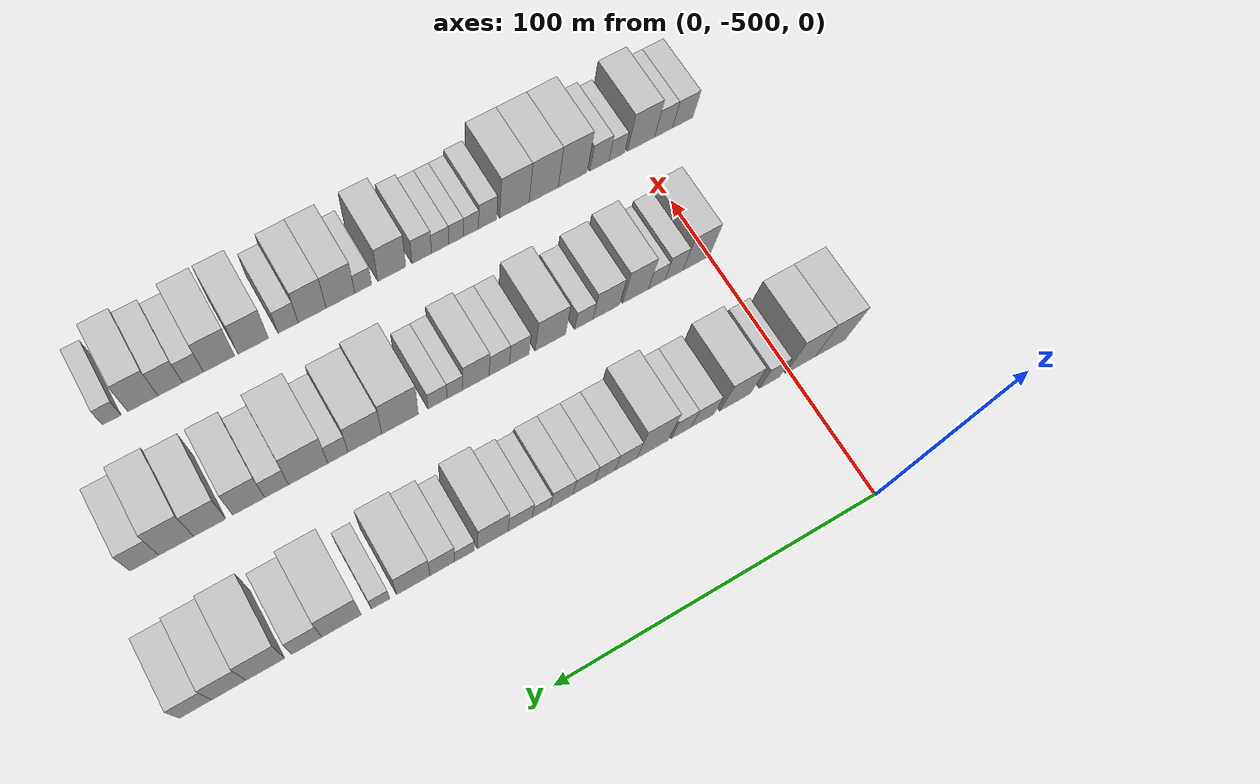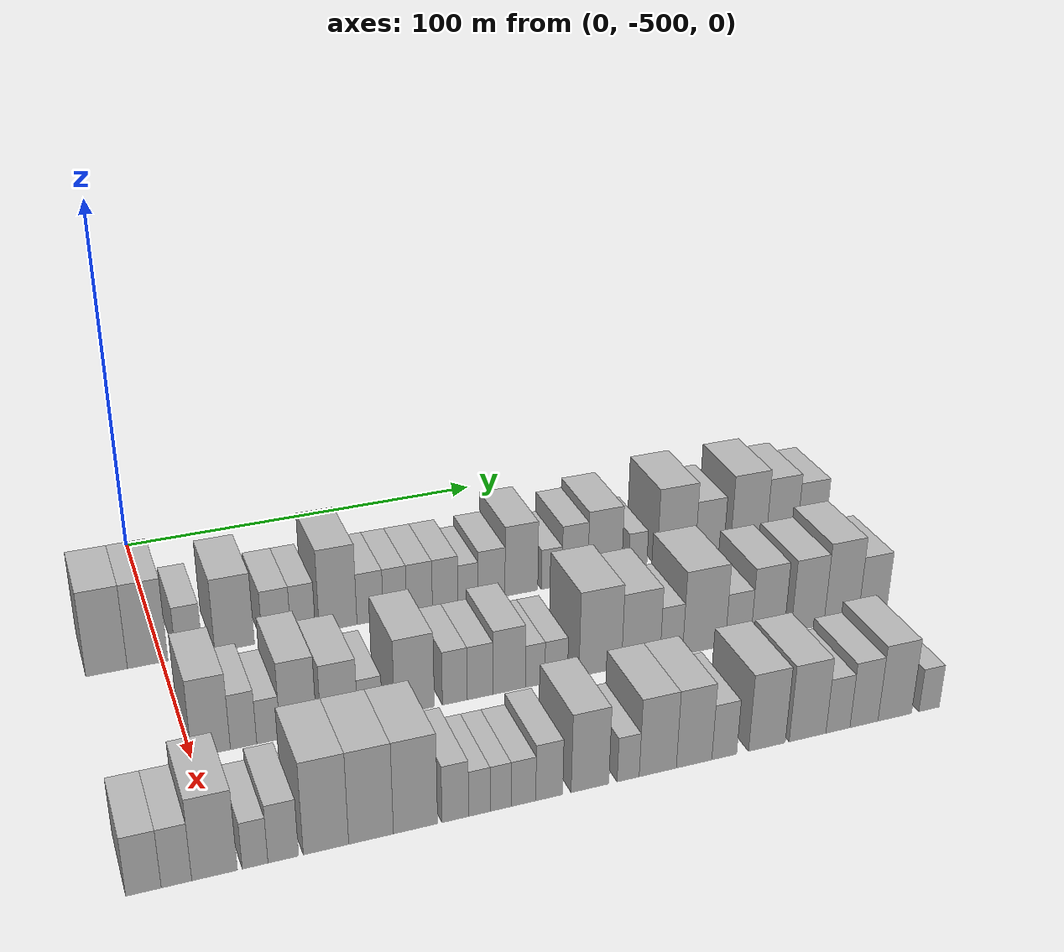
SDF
<sdf version="1.6">
 <world name="default">
  <model name="building_13">
   <static>1</static>
   <pose>50.0000 -513.5343 0 0.000000 0.000000 0.000000</pose>
   <link name="link">
    <pose>0 0 12.00 0 0 0</pose>
    <collision name="collision"><geometry><box><size>20.0000 10.0883 24.0000</size></box></geometry></collision>
    <visual name="visual">
     <cast_shadows>0</cast_shadows>
     <geometry><box><size>20.0000 10.0883 24.0000</size></box></geometry>
     <material>
      <script>
       <uri>model://HANNAS_wall/materials/scripts</uri>
       <uri>model://HANNAS_wall/materials/textures</uri>
       <name>vrc/HANNAS_wall</name>
      </script>
     </material>
    </visual>
   </link>
  </model>
  <model name="building_14">
   <static>1</static>
   <pose>50.0000 -503.5252 0 0.000000 0.000000 0.000000</pose>
   <link name="link">
    <pose>0 0 12.00 0 0 0</pose>
    <collision name="collision"><geometry><box><size>20.0000 9.9298 24.0000</size></box></geometry></collision>
    <visual name="visual">
     <cast_shadows>0</cast_shadows>
     <geometry><box><size>20.0000 9.9298 24.0000</size></box></geometry>
     <material>
      <script>
       <uri>model://HANNAS_wall/materials/scripts</uri>
       <uri>model://HANNAS_wall/materials/textures</uri>
       <name>vrc/HANNAS_wall</name>
      </script>
     </material>
    </visual>
   </link>
  </model>
  <model name="building_15">
   <static>1</static>
   <pose>50.0000 -493.2294 0 0.000000 0.000000 0.000000</pose>
   <link name="link">
    <pose>0 0 7.50 0 0 0</pose>
    <collision name="collision"><geometry><box><size>20.0000 6.6619 15.0000</size></box></geometry></collision>
    <visual name="visual">
     <cast_shadows>0</cast_shadows>
     <geometry><box><size>20.0000 6.6619 15.0000</size></box></geometry>
     <material>
      <script>
       <uri>model://HANNAS_wall/materials/scripts</uri>
       <uri>model://HANNAS_wall/materials/textures</uri>
       <name>vrc/HANNAS_wall</name>
      </script>
     </material>
    </visual>
   </link>
  </model>
  <model name="building_16">
   <static>1</static>
   <pose>50.0000 -481.8707 0 0.000000 0.000000 0.000000</pose>
   <link name="link">
    <pose>0 0 10.50 0 0 0</pose>
    <collision name="collision"><geometry><box><size>20.0000 10.0555 21.0000</size></box></geometry></collision>
    <visual name="visual">
     <cast_shadows>0</cast_shadows>
     <geometry><box><size>20.0000 10.0555 21.0000</size></box></geometry>
     <material>
      <script>
       <uri>model://HANNAS_wall/materials/scripts</uri>
       <uri>model://HANNAS_wall/materials/textures</uri>
       <name>vrc/HANNAS_wall</name>
      </script>
     </material>
    </visual>
   </link>
  </model>
  <model name="building_17">
   <static>1</static>
   <pose>50.0000 -471.1658 0 0.000000 0.000000 0.000000</pose>
   <link name="link">
    <pose>0 0 7.50 0 0 0</pose>
    <collision name="collision"><geometry><box><size>20.0000 7.3543 15.0000</size></box></geometry></collision>
    <visual name="visual">
     <cast_shadows>0</cast_shadows>
     <geometry><box><size>20.0000 7.3543 15.0000</size></box></geometry>
     <material>
      <script>
       <uri>model://HANNAS_wall/materials/scripts</uri>
       <uri>model://HANNAS_wall/materials/textures</uri>
       <name>vrc/HANNAS_wall</name>
      </script>
     </material>
    </visual>
   </link>
  </model>
  <model name="building_18">
   <static>1</static>
   <pose>50.0000 -464.2979 0 0.000000 0.000000 0.000000</pose>
   <link name="link">
    <pose>0 0 7.50 0 0 0</pose>
    <collision name="collision"><geometry><box><size>20.0000 6.3814 15.0000</size></box></geometry></collision>
    <visual name="visual">
     <cast_shadows>0</cast_shadows>
     <geometry><box><size>20.0000 6.3814 15.0000</size></box></geometry>
     <material>
      <script>
       <uri>model://HANNAS_wall/materials/scripts</uri>
       <uri>model://HANNAS_wall/materials/textures</uri>
       <name>vrc/HANNAS_wall</name>
      </script>
     </material>
    </visual>
   </link>
  </model>
  <model name="building_19">
   <static>1</static>
   <pose>50.0000 -455.1495 0 0.000000 0.000000 0.000000</pose>
   <link name="link">
    <pose>0 0 12.00 0 0 0</pose>
    <collision name="collision"><geometry><box><size>20.0000 9.9155 24.0000</size></box></geometry></collision>
    <visual name="visual">
     <cast_shadows>0</cast_shadows>
     <geometry><box><size>20.0000 9.9155 24.0000</size></box></geometry>
     <material>
      <script>
       <uri>model://HANNAS_wall/materials/scripts</uri>
       <uri>model://HANNAS_wall/materials/textures</uri>
       <name>vrc/HANNAS_wall</name>
      </script>
     </material>
    </visual>
   </link>
  </model>
  <model name="building_20">
   <static>1</static>
   <pose>50.0000 -446.6802 0 0.000000 0.000000 0.000000</pose>
   <link name="link">
    <pose>0 0 7.50 0 0 0</pose>
    <collision name="collision"><geometry><box><size>20.0000 7.0231 15.0000</size></box></geometry></collision>
    <visual name="visual">
     <cast_shadows>0</cast_shadows>
     <geometry><box><size>20.0000 7.0231 15.0000</size></box></geometry>
     <material>
      <script>
       <uri>model://HANNAS_wall/materials/scripts</uri>
       <uri>model://HANNAS_wall/materials/textures</uri>
       <name>vrc/HANNAS_wall</name>
      </script>
     </material>
    </visual>
   </link>
  </model>
  <model name="building_21">
   <static>1</static>
   <pose>50.0000 -440.0367 0 0.000000 0.000000 0.000000</pose>
   <link name="link">
    <pose>0 0 7.50 0 0 0</pose>
    <collision name="collision"><geometry><box><size>20.0000 6.2639 15.0000</size></box></geometry></collision>
    <visual name="visual">
     <cast_shadows>0</cast_shadows>
     <geometry><box><size>20.0000 6.2639 15.0000</size></box></geometry>
     <material>
      <script>
       <uri>model://HANNAS_wall/materials/scripts</uri>
       <uri>model://HANNAS_wall/materials/textures</uri>
       <name>vrc/HANNAS_wall</name>
      </script>
     </material>
    </visual>
   </link>
  </model>
  <model name="building_22">
   <static>1</static>
   <pose>50.0000 -433.4118 0 0.000000 0.000000 0.000000</pose>
   <link name="link">
    <pose>0 0 7.50 0 0 0</pose>
    <collision name="collision"><geometry><box><size>20.0000 6.9858 15.0000</size></box></geometry></collision>
    <visual name="visual">
     <cast_shadows>0</cast_shadows>
     <geometry><box><size>20.0000 6.9858 15.0000</size></box></geometry>
     <material>
      <script>
       <uri>model://HANNAS_wall/materials/scripts</uri>
       <uri>model://HANNAS_wall/materials/textures</uri>
       <name>vrc/HANNAS_wall</name>
      </script>
     </material>
    </visual>
   </link>
  </model>
  <model name="building_23">
   <static>1</static>
   <pose>50.0000 -426.4306 0 0.000000 0.000000 0.000000</pose>
   <link name="link">
    <pose>0 0 7.50 0 0 0</pose>
    <collision name="collision"><geometry><box><size>20.0000 6.9766 15.0000</size></box></geometry></collision>
    <visual name="visual">
     <cast_shadows>0</cast_shadows>
     <geometry><box><size>20.0000 6.9766 15.0000</size></box></geometry>
     <material>
      <script>
       <uri>model://HANNAS_wall/materials/scripts</uri>
       <uri>model://HANNAS_wall/materials/textures</uri>
       <name>vrc/HANNAS_wall</name>
      </script>
     </material>
    </visual>
   </link>
  </model>
  <model name="building_24">
   <static>1</static>
   <pose>50.0000 -420.1451 0 0.000000 0.000000 0.000000</pose>
   <link name="link">
    <pose>0 0 6.00 0 0 0</pose>
    <collision name="collision"><geometry><box><size>20.0000 5.5945 12.0000</size></box></geometry></collision>
    <visual name="visual">
     <cast_shadows>0</cast_shadows>
     <geometry><box><size>20.0000 5.5945 12.0000</size></box></geometry>
     <material>
      <script>
       <uri>model://HANNAS_wall/materials/scripts</uri>
       <uri>model://HANNAS_wall/materials/textures</uri>
       <name>vrc/HANNAS_wall</name>
      </script>
     </material>
    </visual>
   </link>
  </model>
  <model name="building_25">
   <static>1</static>
   <pose>50.0000 -413.6183 0 0.000000 0.000000 0.000000</pose>
   <link name="link">
    <pose>0 0 7.50 0 0 0</pose>
    <collision name="collision"><geometry><box><size>20.0000 7.4590 15.0000</size></box></geometry></collision>
    <visual name="visual">
     <cast_shadows>0</cast_shadows>
     <geometry><box><size>20.0000 7.4590 15.0000</size></box></geometry>
     <material>
      <script>
       <uri>model://HANNAS_wall/materials/scripts</uri>
       <uri>model://HANNAS_wall/materials/textures</uri>
       <name>vrc/HANNAS_wall</name>
      </script>
     </material>
    </visual>
   </link>
  </model>
  <model name="building_26">
   <static>1</static>
   <pose>50.0000 -405.2751 0 0.000000 0.000000 0.000000</pose>
   <link name="link">
    <pose>0 0 10.50 0 0 0</pose>
    <collision name="collision"><geometry><box><size>20.0000 9.2276 21.0000</size></box></geometry></collision>
    <visual name="visual">
     <cast_shadows>0</cast_shadows>
     <geometry><box><size>20.0000 9.2276 21.0000</size></box></geometry>
     <material>
      <script>
       <uri>model://HANNAS_wall/materials/scripts</uri>
       <uri>model://HANNAS_wall/materials/textures</uri>
       <name>vrc/HANNAS_wall</name>
      </script>
     </material>
    </visual>
   </link>
  </model>
  <model name="building_27">
   <static>1</static>
   <pose>50.0000 -396.7223 0 0.000000 0.000000 0.000000</pose>
   <link name="link">
    <pose>0 0 6.00 0 0 0</pose>
    <collision name="collision"><geometry><box><size>20.0000 5.8781 12.0000</size></box></geometry></collision>
    <visual name="visual">
     <cast_shadows>0</cast_shadows>
     <geometry><box><size>20.0000 5.8781 12.0000</size></box></geometry>
     <material>
      <script>
       <uri>model://HANNAS_wall/materials/scripts</uri>
       <uri>model://HANNAS_wall/materials/textures</uri>
       <name>vrc/HANNAS_wall</name>
      </script>
     </material>
    </visual>
   </link>
  </model>
  <model name="building_28">
   <static>1</static>
   <pose>50.0000 -390.0835 0 0.000000 0.000000 0.000000</pose>
   <link name="link">
    <pose>0 0 9.00 0 0 0</pose>
    <collision name="collision"><geometry><box><size>20.0000 7.3994 18.0000</size></box></geometry></collision>
    <visual name="visual">
     <cast_shadows>0</cast_shadows>
     <geometry><box><size>20.0000 7.3994 18.0000</size></box></geometry>
     <material>
      <script>
       <uri>model://HANNAS_wall/materials/scripts</uri>
       <uri>model://HANNAS_wall/materials/textures</uri>
       <name>vrc/HANNAS_wall</name>
      </script>
     </material>
    </visual>
   </link>
  </model>
  <model name="building_29">
   <static>1</static>
   <pose>50.0000 -381.4417 0 0.000000 0.000000 0.000000</pose>
   <link name="link">
    <pose>0 0 10.50 0 0 0</pose>
    <collision name="collision"><geometry><box><size>20.0000 9.8843 21.0000</size></box></geometry></collision>
    <visual name="visual">
     <cast_shadows>0</cast_shadows>
     <geometry><box><size>20.0000 9.8843 21.0000</size></box></geometry>
     <material>
      <script>
       <uri>model://HANNAS_wall/materials/scripts</uri>
       <uri>model://HANNAS_wall/materials/textures</uri>
       <name>vrc/HANNAS_wall</name>
      </script>
     </material>
    </visual>
   </link>
  </model>
  <model name="building_30">
   <static>1</static>
   <pose>50.0000 -371.7914 0 0.000000 0.000000 0.000000</pose>
   <link name="link">
    <pose>0 0 6.00 0 0 0</pose>
    <collision name="collision"><geometry><box><size>20.0000 5.4162 12.0000</size></box></geometry></collision>
    <visual name="visual">
     <cast_shadows>0</cast_shadows>
     <geometry><box><size>20.0000 5.4162 12.0000</size></box></geometry>
     <material>
      <script>
       <uri>model://HANNAS_wall/materials/scripts</uri>
       <uri>model://HANNAS_wall/materials/textures</uri>
       <name>vrc/HANNAS_wall</name>
      </script>
     </material>
    </visual>
   </link>
  </model>
  <model name="building_31">
   <static>1</static>
   <pose>50.0000 -360.3759 0 0.000000 0.000000 0.000000</pose>
   <link name="link">
    <pose>0 0 12.00 0 0 0</pose>
    <collision name="collision"><geometry><box><size>20.0000 11.4149 24.0000</size></box></geometry></collision>
    <visual name="visual">
     <cast_shadows>0</cast_shadows>
     <geometry><box><size>20.0000 11.4149 24.0000</size></box></geometry>
     <material>
      <script>
       <uri>model://HANNAS_wall/materials/scripts</uri>
       <uri>model://HANNAS_wall/materials/textures</uri>
       <name>vrc/HANNAS_wall</name>
      </script>
     </material>
    </visual>
   </link>
  </model>
  <model name="building_32">
   <static>1</static>
   <pose>50.0000 -350.3277 0 0.000000 0.000000 0.000000</pose>
   <link name="link">
    <pose>0 0 9.00 0 0 0</pose>
    <collision name="collision"><geometry><box><size>20.0000 8.6814 18.0000</size></box></geometry></collision>
    <visual name="visual">
     <cast_shadows>0</cast_shadows>
     <geometry><box><size>20.0000 8.6814 18.0000</size></box></geometry>
     <material>
      <script>
       <uri>model://HANNAS_wall/materials/scripts</uri>
       <uri>model://HANNAS_wall/materials/textures</uri>
       <name>vrc/HANNAS_wall</name>
      </script>
     </material>
    </visual>
   </link>
  </model>
  <model name="building_33">
   <static>1</static>
   <pose>50.0000 -338.4936 0 0.000000 0.000000 0.000000</pose>
   <link name="link">
    <pose>0 0 12.00 0 0 0</pose>
    <collision name="collision"><geometry><box><size>20.0000 10.9869 24.0000</size></box></geometry></collision>
    <visual name="visual">
     <cast_shadows>0</cast_shadows>
     <geometry><box><size>20.0000 10.9869 24.0000</size></box></geometry>
     <material>
      <script>
       <uri>model://HANNAS_wall/materials/scripts</uri>
       <uri>model://HANNAS_wall/materials/textures</uri>
       <name>vrc/HANNAS_wall</name>
      </script>
     </material>
    </visual>
   </link>
  </model>
  <model name="building_34">
   <static>1</static>
   <pose>50.0000 -328.1596 0 0.000000 0.000000 0.000000</pose>
   <link name="link">
    <pose>0 0 10.50 0 0 0</pose>
    <collision name="collision"><geometry><box><size>20.0000 9.6810 21.0000</size></box></geometry></collision>
    <visual name="visual">
     <cast_shadows>0</cast_shadows>
     <geometry><box><size>20.0000 9.6810 21.0000</size></box></geometry>
     <material>
      <script>
       <uri>model://HANNAS_wall/materials/scripts</uri>
       <uri>model://HANNAS_wall/materials/textures</uri>
       <name>vrc/HANNAS_wall</name>
      </script>
     </material>
    </visual>
   </link>
  </model>
  <model name="building_35">
   <static>1</static>
   <pose>50.0000 -318.8257 0 0.000000 0.000000 0.000000</pose>
   <link name="link">
    <pose>0 0 9.00 0 0 0</pose>
    <collision name="collision"><geometry><box><size>20.0000 8.9869 18.0000</size></box></geometry></collision>
    <visual name="visual">
     <cast_shadows>0</cast_shadows>
     <geometry><box><size>20.0000 8.9869 18.0000</size></box></geometry>
     <material>
      <script>
       <uri>model://HANNAS_wall/materials/scripts</uri>
       <uri>model://HANNAS_wall/materials/textures</uri>
       <name>vrc/HANNAS_wall</name>
      </script>
     </material>
    </visual>
   </link>
  </model>
  <model name="building_153">
   <static>1</static>
   <pose>90.0000 -495.4189 0 0.000000 0.000000 0.000000</pose>
   <link name="link">
    <pose>0 0 10.50 0 0 0</pose>
    <collision name="collision"><geometry><box><size>20.0000 8.9035 21.0000</size></box></geometry></collision>
    <visual name="visual">
     <cast_shadows>0</cast_shadows>
     <geometry><box><size>20.0000 8.9035 21.0000</size></box></geometry>
     <material>
      <script>
       <uri>model://HANNAS_wall/materials/scripts</uri>
       <uri>model://HANNAS_wall/materials/textures</uri>
       <name>vrc/HANNAS_wall</name>
      </script>
     </material>
    </visual>
   </link>
  </model>
  <model name="building_154">
   <static>1</static>
   <pose>90.0000 -487.9175 0 0.000000 0.000000 0.000000</pose>
   <link name="link">
    <pose>0 0 7.50 0 0 0</pose>
    <collision name="collision"><geometry><box><size>20.0000 6.0993 15.0000</size></box></geometry></collision>
    <visual name="visual">
     <cast_shadows>0</cast_shadows>
     <geometry><box><size>20.0000 6.0993 15.0000</size></box></geometry>
     <material>
      <script>
       <uri>model://HANNAS_wall/materials/scripts</uri>
       <uri>model://HANNAS_wall/materials/textures</uri>
       <name>vrc/HANNAS_wall</name>
      </script>
     </material>
    </visual>
   </link>
  </model>
  <model name="building_155">
   <static>1</static>
   <pose>90.0000 -482.1044 0 0.000000 0.000000 0.000000</pose>
   <link name="link">
    <pose>0 0 6.00 0 0 0</pose>
    <collision name="collision"><geometry><box><size>20.0000 5.5268 12.0000</size></box></geometry></collision>
    <visual name="visual">
     <cast_shadows>0</cast_shadows>
     <geometry><box><size>20.0000 5.5268 12.0000</size></box></geometry>
     <material>
      <script>
       <uri>model://HANNAS_wall/materials/scripts</uri>
       <uri>model://HANNAS_wall/materials/textures</uri>
       <name>vrc/HANNAS_wall</name>
      </script>
     </material>
    </visual>
   </link>
  </model>
  <model name="building_156">
   <static>1</static>
   <pose>90.0000 -475.0347 0 0.000000 0.000000 0.000000</pose>
   <link name="link">
    <pose>0 0 10.50 0 0 0</pose>
    <collision name="collision"><geometry><box><size>20.0000 8.6125 21.0000</size></box></geometry></collision>
    <visual name="visual">
     <cast_shadows>0</cast_shadows>
     <geometry><box><size>20.0000 8.6125 21.0000</size></box></geometry>
     <material>
      <script>
       <uri>model://HANNAS_wall/materials/scripts</uri>
       <uri>model://HANNAS_wall/materials/textures</uri>
       <name>vrc/HANNAS_wall</name>
      </script>
     </material>
    </visual>
   </link>
  </model>
  <model name="building_157">
   <static>1</static>
   <pose>90.0000 -465.3340 0 0.000000 0.000000 0.000000</pose>
   <link name="link">
    <pose>0 0 9.00 0 0 0</pose>
    <collision name="collision"><geometry><box><size>20.0000 8.7889 18.0000</size></box></geometry></collision>
    <visual name="visual">
     <cast_shadows>0</cast_shadows>
     <geometry><box><size>20.0000 8.7889 18.0000</size></box></geometry>
     <material>
      <script>
       <uri>model://HANNAS_wall/materials/scripts</uri>
       <uri>model://HANNAS_wall/materials/textures</uri>
       <name>vrc/HANNAS_wall</name>
      </script>
     </material>
    </visual>
   </link>
  </model>
  <model name="building_158">
   <static>1</static>
   <pose>90.0000 -457.9556 0 0.000000 0.000000 0.000000</pose>
   <link name="link">
    <pose>0 0 6.00 0 0 0</pose>
    <collision name="collision"><geometry><box><size>20.0000 5.9680 12.0000</size></box></geometry></collision>
    <visual name="visual">
     <cast_shadows>0</cast_shadows>
     <geometry><box><size>20.0000 5.9680 12.0000</size></box></geometry>
     <material>
      <script>
       <uri>model://HANNAS_wall/materials/scripts</uri>
       <uri>model://HANNAS_wall/materials/textures</uri>
       <name>vrc/HANNAS_wall</name>
      </script>
     </material>
    </visual>
   </link>
  </model>
  <model name="building_159">
   <static>1</static>
   <pose>90.0000 -447.0557 0 0.000000 0.000000 0.000000</pose>
   <link name="link">
    <pose>0 0 10.50 0 0 0</pose>
    <collision name="collision"><geometry><box><size>20.0000 9.8318 21.0000</size></box></geometry></collision>
    <visual name="visual">
     <cast_shadows>0</cast_shadows>
     <geometry><box><size>20.0000 9.8318 21.0000</size></box></geometry>
     <material>
      <script>
       <uri>model://HANNAS_wall/materials/scripts</uri>
       <uri>model://HANNAS_wall/materials/textures</uri>
       <name>vrc/HANNAS_wall</name>
      </script>
     </material>
    </visual>
   </link>
  </model>
  <model name="building_160">
   <static>1</static>
   <pose>90.0000 -437.0159 0 0.000000 0.000000 0.000000</pose>
   <link name="link">
    <pose>0 0 7.50 0 0 0</pose>
    <collision name="collision"><geometry><box><size>20.0000 6.2480 15.0000</size></box></geometry></collision>
    <visual name="visual">
     <cast_shadows>0</cast_shadows>
     <geometry><box><size>20.0000 6.2480 15.0000</size></box></geometry>
     <material>
      <script>
       <uri>model://HANNAS_wall/materials/scripts</uri>
       <uri>model://HANNAS_wall/materials/textures</uri>
       <name>vrc/HANNAS_wall</name>
      </script>
     </material>
    </visual>
   </link>
  </model>
  <model name="building_161">
   <static>1</static>
   <pose>90.0000 -430.6546 0 0.000000 0.000000 0.000000</pose>
   <link name="link">
    <pose>0 0 7.50 0 0 0</pose>
    <collision name="collision"><geometry><box><size>20.0000 6.4744 15.0000</size></box></geometry></collision>
    <visual name="visual">
     <cast_shadows>0</cast_shadows>
     <geometry><box><size>20.0000 6.4744 15.0000</size></box></geometry>
     <material>
      <script>
       <uri>model://HANNAS_wall/materials/scripts</uri>
       <uri>model://HANNAS_wall/materials/textures</uri>
       <name>vrc/HANNAS_wall</name>
      </script>
     </material>
    </visual>
   </link>
  </model>
  <model name="building_162">
   <static>1</static>
   <pose>90.0000 -423.2687 0 0.000000 0.000000 0.000000</pose>
   <link name="link">
    <pose>0 0 9.00 0 0 0</pose>
    <collision name="collision"><geometry><box><size>20.0000 8.2975 18.0000</size></box></geometry></collision>
    <visual name="visual">
     <cast_shadows>0</cast_shadows>
     <geometry><box><size>20.0000 8.2975 18.0000</size></box></geometry>
     <material>
      <script>
       <uri>model://HANNAS_wall/materials/scripts</uri>
       <uri>model://HANNAS_wall/materials/textures</uri>
       <name>vrc/HANNAS_wall</name>
      </script>
     </material>
    </visual>
   </link>
  </model>
  <model name="building_163">
   <static>1</static>
   <pose>90.0000 -416.6083 0 0.000000 0.000000 0.000000</pose>
   <link name="link">
    <pose>0 0 6.00 0 0 0</pose>
    <collision name="collision"><geometry><box><size>20.0000 5.0232 12.0000</size></box></geometry></collision>
    <visual name="visual">
     <cast_shadows>0</cast_shadows>
     <geometry><box><size>20.0000 5.0232 12.0000</size></box></geometry>
     <material>
      <script>
       <uri>model://HANNAS_wall/materials/scripts</uri>
       <uri>model://HANNAS_wall/materials/textures</uri>
       <name>vrc/HANNAS_wall</name>
      </script>
     </material>
    </visual>
   </link>
  </model>
  <model name="building_164">
   <static>1</static>
   <pose>90.0000 -411.1420 0 0.000000 0.000000 0.000000</pose>
   <link name="link">
    <pose>0 0 6.00 0 0 0</pose>
    <collision name="collision"><geometry><box><size>20.0000 5.9096 12.0000</size></box></geometry></collision>
    <visual name="visual">
     <cast_shadows>0</cast_shadows>
     <geometry><box><size>20.0000 5.9096 12.0000</size></box></geometry>
     <material>
      <script>
       <uri>model://HANNAS_wall/materials/scripts</uri>
       <uri>model://HANNAS_wall/materials/textures</uri>
       <name>vrc/HANNAS_wall</name>
      </script>
     </material>
    </visual>
   </link>
  </model>
  <model name="building_165">
   <static>1</static>
   <pose>90.0000 -399.5384 0 0.000000 0.000000 0.000000</pose>
   <link name="link">
    <pose>0 0 12.00 0 0 0</pose>
    <collision name="collision"><geometry><box><size>20.0000 11.2975 24.0000</size></box></geometry></collision>
    <visual name="visual">
     <cast_shadows>0</cast_shadows>
     <geometry><box><size>20.0000 11.2975 24.0000</size></box></geometry>
     <material>
      <script>
       <uri>model://HANNAS_wall/materials/scripts</uri>
       <uri>model://HANNAS_wall/materials/textures</uri>
       <name>vrc/HANNAS_wall</name>
      </script>
     </material>
    </visual>
   </link>
  </model>
  <model name="building_166">
   <static>1</static>
   <pose>90.0000 -388.7065 0 0.000000 0.000000 0.000000</pose>
   <link name="link">
    <pose>0 0 10.50 0 0 0</pose>
    <collision name="collision"><geometry><box><size>20.0000 10.3663 21.0000</size></box></geometry></collision>
    <visual name="visual">
     <cast_shadows>0</cast_shadows>
     <geometry><box><size>20.0000 10.3663 21.0000</size></box></geometry>
     <material>
      <script>
       <uri>model://HANNAS_wall/materials/scripts</uri>
       <uri>model://HANNAS_wall/materials/textures</uri>
       <name>vrc/HANNAS_wall</name>
      </script>
     </material>
    </visual>
   </link>
  </model>
  <model name="building_167">
   <static>1</static>
   <pose>90.0000 -380.4522 0 0.000000 0.000000 0.000000</pose>
   <link name="link">
    <pose>0 0 7.50 0 0 0</pose>
    <collision name="collision"><geometry><box><size>20.0000 6.1422 15.0000</size></box></geometry></collision>
    <visual name="visual">
     <cast_shadows>0</cast_shadows>
     <geometry><box><size>20.0000 6.1422 15.0000</size></box></geometry>
     <material>
      <script>
       <uri>model://HANNAS_wall/materials/scripts</uri>
       <uri>model://HANNAS_wall/materials/textures</uri>
       <name>vrc/HANNAS_wall</name>
      </script>
     </material>
    </visual>
   </link>
  </model>
  <model name="building_168">
   <static>1</static>
   <pose>90.0000 -371.4727 0 0.000000 0.000000 0.000000</pose>
   <link name="link">
    <pose>0 0 12.00 0 0 0</pose>
    <collision name="collision"><geometry><box><size>20.0000 11.8168 24.0000</size></box></geometry></collision>
    <visual name="visual">
     <cast_shadows>0</cast_shadows>
     <geometry><box><size>20.0000 11.8168 24.0000</size></box></geometry>
     <material>
      <script>
       <uri>model://HANNAS_wall/materials/scripts</uri>
       <uri>model://HANNAS_wall/materials/textures</uri>
       <name>vrc/HANNAS_wall</name>
      </script>
     </material>
    </visual>
   </link>
  </model>
  <model name="building_169">
   <static>1</static>
   <pose>90.0000 -361.9908 0 0.000000 0.000000 0.000000</pose>
   <link name="link">
    <pose>0 0 7.50 0 0 0</pose>
    <collision name="collision"><geometry><box><size>20.0000 7.1472 15.0000</size></box></geometry></collision>
    <visual name="visual">
     <cast_shadows>0</cast_shadows>
     <geometry><box><size>20.0000 7.1472 15.0000</size></box></geometry>
     <material>
      <script>
       <uri>model://HANNAS_wall/materials/scripts</uri>
       <uri>model://HANNAS_wall/materials/textures</uri>
       <name>vrc/HANNAS_wall</name>
      </script>
     </material>
    </visual>
   </link>
  </model>
  <model name="building_170">
   <static>1</static>
   <pose>90.0000 -353.6864 0 0.000000 0.000000 0.000000</pose>
   <link name="link">
    <pose>0 0 10.50 0 0 0</pose>
    <collision name="collision"><geometry><box><size>20.0000 9.4615 21.0000</size></box></geometry></collision>
    <visual name="visual">
     <cast_shadows>0</cast_shadows>
     <geometry><box><size>20.0000 9.4615 21.0000</size></box></geometry>
     <material>
      <script>
       <uri>model://HANNAS_wall/materials/scripts</uri>
       <uri>model://HANNAS_wall/materials/textures</uri>
       <name>vrc/HANNAS_wall</name>
      </script>
     </material>
    </visual>
   </link>
  </model>
  <model name="building_171">
   <static>1</static>
   <pose>90.0000 -342.2341 0 0.000000 0.000000 0.000000</pose>
   <link name="link">
    <pose>0 0 10.50 0 0 0</pose>
    <collision name="collision"><geometry><box><size>20.0000 9.4432 21.0000</size></box></geometry></collision>
    <visual name="visual">
     <cast_shadows>0</cast_shadows>
     <geometry><box><size>20.0000 9.4432 21.0000</size></box></geometry>
     <material>
      <script>
       <uri>model://HANNAS_wall/materials/scripts</uri>
       <uri>model://HANNAS_wall/materials/textures</uri>
       <name>vrc/HANNAS_wall</name>
      </script>
     </material>
    </visual>
   </link>
  </model>
  <model name="building_172">
   <static>1</static>
   <pose>90.0000 -332.4848 0 0.000000 0.000000 0.000000</pose>
   <link name="link">
    <pose>0 0 12.00 0 0 0</pose>
    <collision name="collision"><geometry><box><size>20.0000 10.0553 24.0000</size></box></geometry></collision>
    <visual name="visual">
     <cast_shadows>0</cast_shadows>
     <geometry><box><size>20.0000 10.0553 24.0000</size></box></geometry>
     <material>
      <script>
       <uri>model://HANNAS_wall/materials/scripts</uri>
       <uri>model://HANNAS_wall/materials/textures</uri>
       <name>vrc/HANNAS_wall</name>
      </script>
     </material>
    </visual>
   </link>
  </model>
  <model name="building_173">
   <static>1</static>
   <pose>90.0000 -323.2910 0 0.000000 0.000000 0.000000</pose>
   <link name="link">
    <pose>0 0 9.00 0 0 0</pose>
    <collision name="collision"><geometry><box><size>20.0000 8.3322 18.0000</size></box></geometry></collision>
    <visual name="visual">
     <cast_shadows>0</cast_shadows>
     <geometry><box><size>20.0000 8.3322 18.0000</size></box></geometry>
     <material>
      <script>
       <uri>model://HANNAS_wall/materials/scripts</uri>
       <uri>model://HANNAS_wall/materials/textures</uri>
       <name>vrc/HANNAS_wall</name>
      </script>
     </material>
    </visual>
   </link>
  </model>
  <model name="building_290">
   <static>1</static>
   <pose>130.0000 -516.8483 0 0.000000 0.000000 0.000000</pose>
   <link name="link">
    <pose>0 0 7.50 0 0 0</pose>
    <collision name="collision"><geometry><box><size>20.0000 7.1997 15.0000</size></box></geometry></collision>
    <visual name="visual">
     <cast_shadows>0</cast_shadows>
     <geometry><box><size>20.0000 7.1997 15.0000</size></box></geometry>
     <material>
      <script>
       <uri>model://HANNAS_wall/materials/scripts</uri>
       <uri>model://HANNAS_wall/materials/textures</uri>
       <name>vrc/HANNAS_wall</name>
      </script>
     </material>
    </visual>
   </link>
  </model>
  <model name="building_291">
   <static>1</static>
   <pose>130.0000 -510.1252 0 0.000000 0.000000 0.000000</pose>
   <link name="link">
    <pose>0 0 7.50 0 0 0</pose>
    <collision name="collision"><geometry><box><size>20.0000 6.2465 15.0000</size></box></geometry></collision>
    <visual name="visual">
     <cast_shadows>0</cast_shadows>
     <geometry><box><size>20.0000 6.2465 15.0000</size></box></geometry>
     <material>
      <script>
       <uri>model://HANNAS_wall/materials/scripts</uri>
       <uri>model://HANNAS_wall/materials/textures</uri>
       <name>vrc/HANNAS_wall</name>
      </script>
     </material>
    </visual>
   </link>
  </model>
  <model name="building_292">
   <static>1</static>
   <pose>130.0000 -502.2788 0 0.000000 0.000000 0.000000</pose>
   <link name="link">
    <pose>0 0 10.50 0 0 0</pose>
    <collision name="collision"><geometry><box><size>20.0000 9.4462 21.0000</size></box></geometry></collision>
    <visual name="visual">
     <cast_shadows>0</cast_shadows>
     <geometry><box><size>20.0000 9.4462 21.0000</size></box></geometry>
     <material>
      <script>
       <uri>model://HANNAS_wall/materials/scripts</uri>
       <uri>model://HANNAS_wall/materials/textures</uri>
       <name>vrc/HANNAS_wall</name>
      </script>
     </material>
    </visual>
   </link>
  </model>
  <model name="building_293">
   <static>1</static>
   <pose>130.0000 -493.8481 0 0.000000 0.000000 0.000000</pose>
   <link name="link">
    <pose>0 0 6.00 0 0 0</pose>
    <collision name="collision"><geometry><box><size>20.0000 5.4152 12.0000</size></box></geometry></collision>
    <visual name="visual">
     <cast_shadows>0</cast_shadows>
     <geometry><box><size>20.0000 5.4152 12.0000</size></box></geometry>
     <material>
      <script>
       <uri>model://HANNAS_wall/materials/scripts</uri>
       <uri>model://HANNAS_wall/materials/textures</uri>
       <name>vrc/HANNAS_wall</name>
      </script>
     </material>
    </visual>
   </link>
  </model>
  <model name="building_294">
   <static>1</static>
   <pose>130.0000 -487.8864 0 0.000000 0.000000 0.000000</pose>
   <link name="link">
    <pose>0 0 7.50 0 0 0</pose>
    <collision name="collision"><geometry><box><size>20.0000 6.5083 15.0000</size></box></geometry></collision>
    <visual name="visual">
     <cast_shadows>0</cast_shadows>
     <geometry><box><size>20.0000 6.5083 15.0000</size></box></geometry>
     <material>
      <script>
       <uri>model://HANNAS_wall/materials/scripts</uri>
       <uri>model://HANNAS_wall/materials/textures</uri>
       <name>vrc/HANNAS_wall</name>
      </script>
     </material>
    </visual>
   </link>
  </model>
  <model name="building_295">
   <static>1</static>
   <pose>130.0000 -478.7346 0 0.000000 0.000000 0.000000</pose>
   <link name="link">
    <pose>0 0 12.00 0 0 0</pose>
    <collision name="collision"><geometry><box><size>20.0000 9.7952 24.0000</size></box></geometry></collision>
    <visual name="visual">
     <cast_shadows>0</cast_shadows>
     <geometry><box><size>20.0000 9.7952 24.0000</size></box></geometry>
     <material>
      <script>
       <uri>model://HANNAS_wall/materials/scripts</uri>
       <uri>model://HANNAS_wall/materials/textures</uri>
       <name>vrc/HANNAS_wall</name>
      </script>
     </material>
    </visual>
   </link>
  </model>
  <model name="building_296">
   <static>1</static>
   <pose>130.0000 -468.9219 0 0.000000 0.000000 0.000000</pose>
   <link name="link">
    <pose>0 0 12.00 0 0 0</pose>
    <collision name="collision"><geometry><box><size>20.0000 9.8303 24.0000</size></box></geometry></collision>
    <visual name="visual">
     <cast_shadows>0</cast_shadows>
     <geometry><box><size>20.0000 9.8303 24.0000</size></box></geometry>
     <material>
      <script>
       <uri>model://HANNAS_wall/materials/scripts</uri>
       <uri>model://HANNAS_wall/materials/textures</uri>
       <name>vrc/HANNAS_wall</name>
      </script>
     </material>
    </visual>
   </link>
  </model>
  <model name="building_297">
   <static>1</static>
   <pose>130.0000 -459.0878 0 0.000000 0.000000 0.000000</pose>
   <link name="link">
    <pose>0 0 12.00 0 0 0</pose>
    <collision name="collision"><geometry><box><size>20.0000 9.8380 24.0000</size></box></geometry></collision>
    <visual name="visual">
     <cast_shadows>0</cast_shadows>
     <geometry><box><size>20.0000 9.8380 24.0000</size></box></geometry>
     <material>
      <script>
       <uri>model://HANNAS_wall/materials/scripts</uri>
       <uri>model://HANNAS_wall/materials/textures</uri>
       <name>vrc/HANNAS_wall</name>
      </script>
     </material>
    </visual>
   </link>
  </model>
  <model name="building_298">
   <static>1</static>
   <pose>130.0000 -450.1578 0 0.000000 0.000000 0.000000</pose>
   <link name="link">
    <pose>0 0 7.50 0 0 0</pose>
    <collision name="collision"><geometry><box><size>20.0000 6.0220 15.0000</size></box></geometry></collision>
    <visual name="visual">
     <cast_shadows>0</cast_shadows>
     <geometry><box><size>20.0000 6.0220 15.0000</size></box></geometry>
     <material>
      <script>
       <uri>model://HANNAS_wall/materials/scripts</uri>
       <uri>model://HANNAS_wall/materials/textures</uri>
       <name>vrc/HANNAS_wall</name>
      </script>
     </material>
    </visual>
   </link>
  </model>
  <model name="building_299">
   <static>1</static>
   <pose>130.0000 -444.6797 0 0.000000 0.000000 0.000000</pose>
   <link name="link">
    <pose>0 0 6.00 0 0 0</pose>
    <collision name="collision"><geometry><box><size>20.0000 4.9340 12.0000</size></box></geometry></collision>
    <visual name="visual">
     <cast_shadows>0</cast_shadows>
     <geometry><box><size>20.0000 4.9340 12.0000</size></box></geometry>
     <material>
      <script>
       <uri>model://HANNAS_wall/materials/scripts</uri>
       <uri>model://HANNAS_wall/materials/textures</uri>
       <name>vrc/HANNAS_wall</name>
      </script>
     </material>
    </visual>
   </link>
  </model>
  <model name="building_300">
   <static>1</static>
   <pose>130.0000 -439.7998 0 0.000000 0.000000 0.000000</pose>
   <link name="link">
    <pose>0 0 6.00 0 0 0</pose>
    <collision name="collision"><geometry><box><size>20.0000 4.8259 12.0000</size></box></geometry></collision>
    <visual name="visual">
     <cast_shadows>0</cast_shadows>
     <geometry><box><size>20.0000 4.8259 12.0000</size></box></geometry>
     <material>
      <script>
       <uri>model://HANNAS_wall/materials/scripts</uri>
       <uri>model://HANNAS_wall/materials/textures</uri>
       <name>vrc/HANNAS_wall</name>
      </script>
     </material>
    </visual>
   </link>
  </model>
  <model name="building_301">
   <static>1</static>
   <pose>130.0000 -434.5237 0 0.000000 0.000000 0.000000</pose>
   <link name="link">
    <pose>0 0 6.00 0 0 0</pose>
    <collision name="collision"><geometry><box><size>20.0000 5.7262 12.0000</size></box></geometry></collision>
    <visual name="visual">
     <cast_shadows>0</cast_shadows>
     <geometry><box><size>20.0000 5.7262 12.0000</size></box></geometry>
     <material>
      <script>
       <uri>model://HANNAS_wall/materials/scripts</uri>
       <uri>model://HANNAS_wall/materials/textures</uri>
       <name>vrc/HANNAS_wall</name>
      </script>
     </material>
    </visual>
   </link>
  </model>
  <model name="building_302">
   <static>1</static>
   <pose>130.0000 -428.4995 0 0.000000 0.000000 0.000000</pose>
   <link name="link">
    <pose>0 0 7.50 0 0 0</pose>
    <collision name="collision"><geometry><box><size>20.0000 6.3222 15.0000</size></box></geometry></collision>
    <visual name="visual">
     <cast_shadows>0</cast_shadows>
     <geometry><box><size>20.0000 6.3222 15.0000</size></box></geometry>
     <material>
      <script>
       <uri>model://HANNAS_wall/materials/scripts</uri>
       <uri>model://HANNAS_wall/materials/textures</uri>
       <name>vrc/HANNAS_wall</name>
      </script>
     </material>
    </visual>
   </link>
  </model>
  <model name="building_303">
   <static>1</static>
   <pose>130.0000 -418.8341 0 0.000000 0.000000 0.000000</pose>
   <link name="link">
    <pose>0 0 10.50 0 0 0</pose>
    <collision name="collision"><geometry><box><size>20.0000 9.0087 21.0000</size></box></geometry></collision>
    <visual name="visual">
     <cast_shadows>0</cast_shadows>
     <geometry><box><size>20.0000 9.0087 21.0000</size></box></geometry>
     <material>
      <script>
       <uri>model://HANNAS_wall/materials/scripts</uri>
       <uri>model://HANNAS_wall/materials/textures</uri>
       <name>vrc/HANNAS_wall</name>
      </script>
     </material>
    </visual>
   </link>
  </model>
  <model name="building_304">
   <static>1</static>
   <pose>130.0000 -409.6575 0 0.000000 0.000000 0.000000</pose>
   <link name="link">
    <pose>0 0 6.00 0 0 0</pose>
    <collision name="collision"><geometry><box><size>20.0000 5.3444 12.0000</size></box></geometry></collision>
    <visual name="visual">
     <cast_shadows>0</cast_shadows>
     <geometry><box><size>20.0000 5.3444 12.0000</size></box></geometry>
     <material>
      <script>
       <uri>model://HANNAS_wall/materials/scripts</uri>
       <uri>model://HANNAS_wall/materials/textures</uri>
       <name>vrc/HANNAS_wall</name>
      </script>
     </material>
    </visual>
   </link>
  </model>
  <model name="building_305">
   <static>1</static>
   <pose>130.0000 -402.4314 0 0.000000 0.000000 0.000000</pose>
   <link name="link">
    <pose>0 0 10.50 0 0 0</pose>
    <collision name="collision"><geometry><box><size>20.0000 9.1078 21.0000</size></box></geometry></collision>
    <visual name="visual">
     <cast_shadows>0</cast_shadows>
     <geometry><box><size>20.0000 9.1078 21.0000</size></box></geometry>
     <material>
      <script>
       <uri>model://HANNAS_wall/materials/scripts</uri>
       <uri>model://HANNAS_wall/materials/textures</uri>
       <name>vrc/HANNAS_wall</name>
      </script>
     </material>
    </visual>
   </link>
  </model>
  <model name="building_306">
   <static>1</static>
   <pose>130.0000 -393.4585 0 0.000000 0.000000 0.000000</pose>
   <link name="link">
    <pose>0 0 10.50 0 0 0</pose>
    <collision name="collision"><geometry><box><size>20.0000 8.8381 21.0000</size></box></geometry></collision>
    <visual name="visual">
     <cast_shadows>0</cast_shadows>
     <geometry><box><size>20.0000 8.8381 21.0000</size></box></geometry>
     <material>
      <script>
       <uri>model://HANNAS_wall/materials/scripts</uri>
       <uri>model://HANNAS_wall/materials/textures</uri>
       <name>vrc/HANNAS_wall</name>
      </script>
     </material>
    </visual>
   </link>
  </model>
  <model name="building_307">
   <static>1</static>
   <pose>130.0000 -385.9074 0 0.000000 0.000000 0.000000</pose>
   <link name="link">
    <pose>0 0 7.50 0 0 0</pose>
    <collision name="collision"><geometry><box><size>20.0000 6.2640 15.0000</size></box></geometry></collision>
    <visual name="visual">
     <cast_shadows>0</cast_shadows>
     <geometry><box><size>20.0000 6.2640 15.0000</size></box></geometry>
     <material>
      <script>
       <uri>model://HANNAS_wall/materials/scripts</uri>
       <uri>model://HANNAS_wall/materials/textures</uri>
       <name>vrc/HANNAS_wall</name>
      </script>
     </material>
    </visual>
   </link>
  </model>
  <model name="building_308">
   <static>1</static>
   <pose>130.0000 -375.0651 0 0.000000 0.000000 0.000000</pose>
   <link name="link">
    <pose>0 0 10.50 0 0 0</pose>
    <collision name="collision"><geometry><box><size>20.0000 9.4207 21.0000</size></box></geometry></collision>
    <visual name="visual">
     <cast_shadows>0</cast_shadows>
     <geometry><box><size>20.0000 9.4207 21.0000</size></box></geometry>
     <material>
      <script>
       <uri>model://HANNAS_wall/materials/scripts</uri>
       <uri>model://HANNAS_wall/materials/textures</uri>
       <name>vrc/HANNAS_wall</name>
      </script>
     </material>
    </visual>
   </link>
  </model>
  <model name="building_309">
   <static>1</static>
   <pose>130.0000 -364.5666 0 0.000000 0.000000 0.000000</pose>
   <link name="link">
    <pose>0 0 10.50 0 0 0</pose>
    <collision name="collision"><geometry><box><size>20.0000 9.5764 21.0000</size></box></geometry></collision>
    <visual name="visual">
     <cast_shadows>0</cast_shadows>
     <geometry><box><size>20.0000 9.5764 21.0000</size></box></geometry>
     <material>
      <script>
       <uri>model://HANNAS_wall/materials/scripts</uri>
       <uri>model://HANNAS_wall/materials/textures</uri>
       <name>vrc/HANNAS_wall</name>
      </script>
     </material>
    </visual>
   </link>
  </model>
  <model name="building_310">
   <static>1</static>
   <pose>130.0000 -356.6105 0 0.000000 0.000000 0.000000</pose>
   <link name="link">
    <pose>0 0 7.50 0 0 0</pose>
    <collision name="collision"><geometry><box><size>20.0000 6.3357 15.0000</size></box></geometry></collision>
    <visual name="visual">
     <cast_shadows>0</cast_shadows>
     <geometry><box><size>20.0000 6.3357 15.0000</size></box></geometry>
     <material>
      <script>
       <uri>model://HANNAS_wall/materials/scripts</uri>
       <uri>model://HANNAS_wall/materials/textures</uri>
       <name>vrc/HANNAS_wall</name>
      </script>
     </material>
    </visual>
   </link>
  </model>
  <model name="building_311">
   <static>1</static>
   <pose>130.0000 -349.7077 0 0.000000 0.000000 0.000000</pose>
   <link name="link">
    <pose>0 0 9.00 0 0 0</pose>
    <collision name="collision"><geometry><box><size>20.0000 7.4699 18.0000</size></box></geometry></collision>
    <visual name="visual">
     <cast_shadows>0</cast_shadows>
     <geometry><box><size>20.0000 7.4699 18.0000</size></box></geometry>
     <material>
      <script>
       <uri>model://HANNAS_wall/materials/scripts</uri>
       <uri>model://HANNAS_wall/materials/textures</uri>
       <name>vrc/HANNAS_wall</name>
      </script>
     </material>
    </visual>
   </link>
  </model>
  <model name="building_312">
   <static>1</static>
   <pose>130.0000 -341.4335 0 0.000000 0.000000 0.000000</pose>
   <link name="link">
    <pose>0 0 10.50 0 0 0</pose>
    <collision name="collision"><geometry><box><size>20.0000 9.0784 21.0000</size></box></geometry></collision>
    <visual name="visual">
     <cast_shadows>0</cast_shadows>
     <geometry><box><size>20.0000 9.0784 21.0000</size></box></geometry>
     <material>
      <script>
       <uri>model://HANNAS_wall/materials/scripts</uri>
       <uri>model://HANNAS_wall/materials/textures</uri>
       <name>vrc/HANNAS_wall</name>
      </script>
     </material>
    </visual>
   </link>
  </model>
  <model name="building_313">
   <static>1</static>
   <pose>130.0000 -332.1164 0 0.000000 0.000000 0.000000</pose>
   <link name="link">
    <pose>0 0 6.00 0 0 0</pose>
    <collision name="collision"><geometry><box><size>20.0000 5.5559 12.0000</size></box></geometry></collision>
    <visual name="visual">
     <cast_shadows>0</cast_shadows>
     <geometry><box><size>20.0000 5.5559 12.0000</size></box></geometry>
     <material>
      <script>
       <uri>model://HANNAS_wall/materials/scripts</uri>
       <uri>model://HANNAS_wall/materials/textures</uri>
       <name>vrc/HANNAS_wall</name>
      </script>
     </material>
    </visual>
   </link>
  </model>
 </world>
</sdf>
